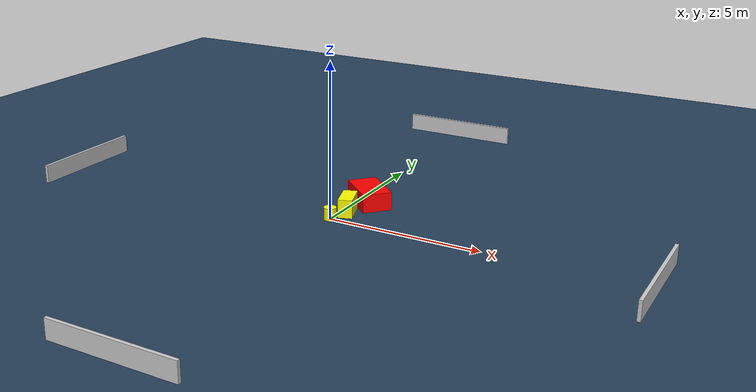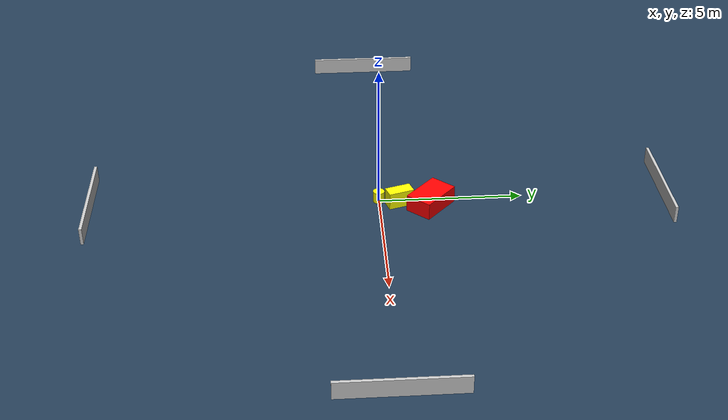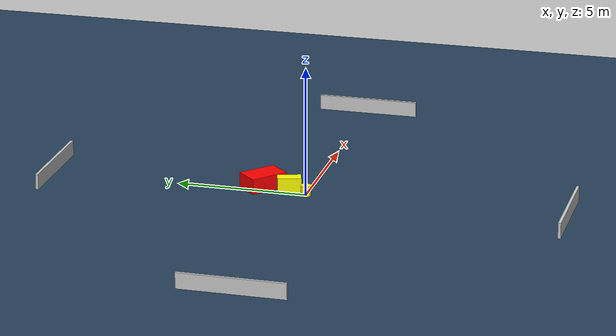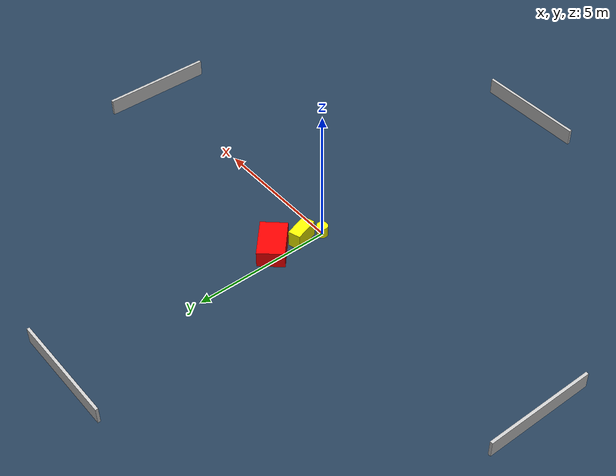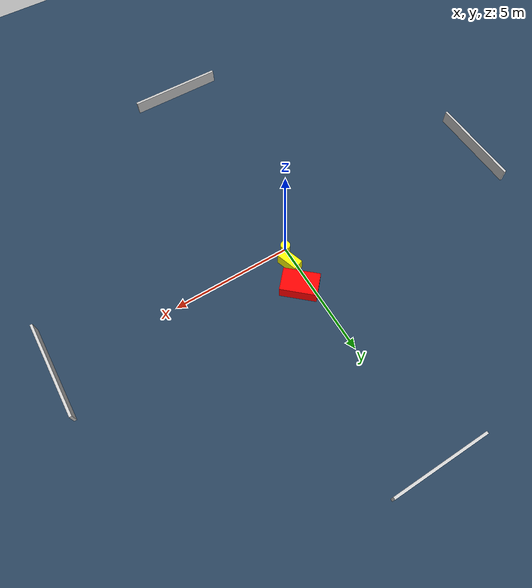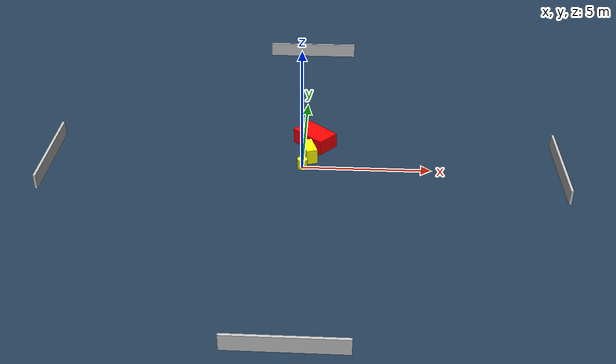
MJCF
<?xml version="1.0" ?>
<mujoco model="generated_environment">
  <option timestep="0.01" integrator="RK4" cone="elliptic"/>
  <default>
    <geom density="1"/>
  </default>
  <asset>
    <texture builtin="gradient" height="3072" name="skybox" rgb1="0.3 0.5 0.7" rgb2="0 0 0" type="skybox" width="512"/>
    <texture builtin="checker" height="300" name="groundplane" rgb1="0.2 0.3 0.4" rgb2="0.1 0.2 0.3" type="2d" width="300"/>
    <material name="groundplane" reflectance="0.2" texrepeat="5 5" texture="groundplane"/>
  </asset>
  <worldbody>
    <light dir="0 0 -1" directional="true" pos="0 0 1.5"/>
    <geom condim="3" friction="0.5 0.005 0.001" material="groundplane" name="floor" pos="0 0 0" size="0 0 0.05" type="plane"/>
    <body name="walls">
      <geom name="wall_1" condim="4" pos="-10.0 0.0 0.3" rgba="0.800000011920929 0.800000011920929 0.800000011920929 1.0" size="0.05 2.0 0.3" type="box"/>
      <geom name="wall_2" condim="4" pos="10.0 0.0 0.3" rgba="0.800000011920929 0.800000011920929 0.800000011920929 1.0" size="0.05 2.0 0.3" type="box"/>
      <geom name="wall_3" condim="4" pos="0.0 -10.0 0.3" rgba="0.800000011920929 0.800000011920929 0.800000011920929 1.0" size="2.0 0.05 0.3" type="box"/>
      <geom name="wall_4" condim="4" pos="0.0 10.0 0.3" rgba="0.800000011920929 0.800000011920929 0.800000011920929 1.0" size="2.0 0.05 0.3" type="box"/>
    </body>
    <body name="robot">
      <joint name="joint_x" type="slide" pos="0 0 0" axis="1 0 0"/>
      <joint name="joint_y" type="slide" pos="0 0 0" axis="0 1 0"/>
      <geom name="robot" type="cylinder" pos="0.0 0.0 0.2" size="0.2 0.2 0.0" mass="5.0" friction="1.0 0.005 0.0001" condim="4" rgba="1.0 1.0 0.0 1.0"/>
    </body>
    <body name="obstacle_1_movable">
      <geom name="obstacle_1_movable" condim="4" pos="0.22822708042477538 0.7075836971851458 0.3" euler="0 0 17.763758618259914" friction="0.0 0.005 0.001" rgba="1.0 1.0 0.0 1.0" size="0.22530405550852975 0.45225825909789 0.3" type="box" mass="0.1"/>
      <joint type="free"/>
    </body>
    <body name="obstacle_2_static">
      <geom name="obstacle_2_static" condim="4" pos="0.4239864794287064 1.783416821843405 0.3" euler="0 0 228.02444547897454" friction="0.0 0.005 0.001" rgba="1.0 0.0 0.0 1.0" size="0.4781333898831924 0.7495219468219392 0.3" type="box"/>
    </body>
  </worldbody>
  <actuator>
    <motor name="actuator_x" joint="joint_x" gear="1" ctrlrange="-1 1"/>
    <motor name="actuator_y" joint="joint_y" gear="1" ctrlrange="-1 1"/>
  </actuator>
</mujoco>
